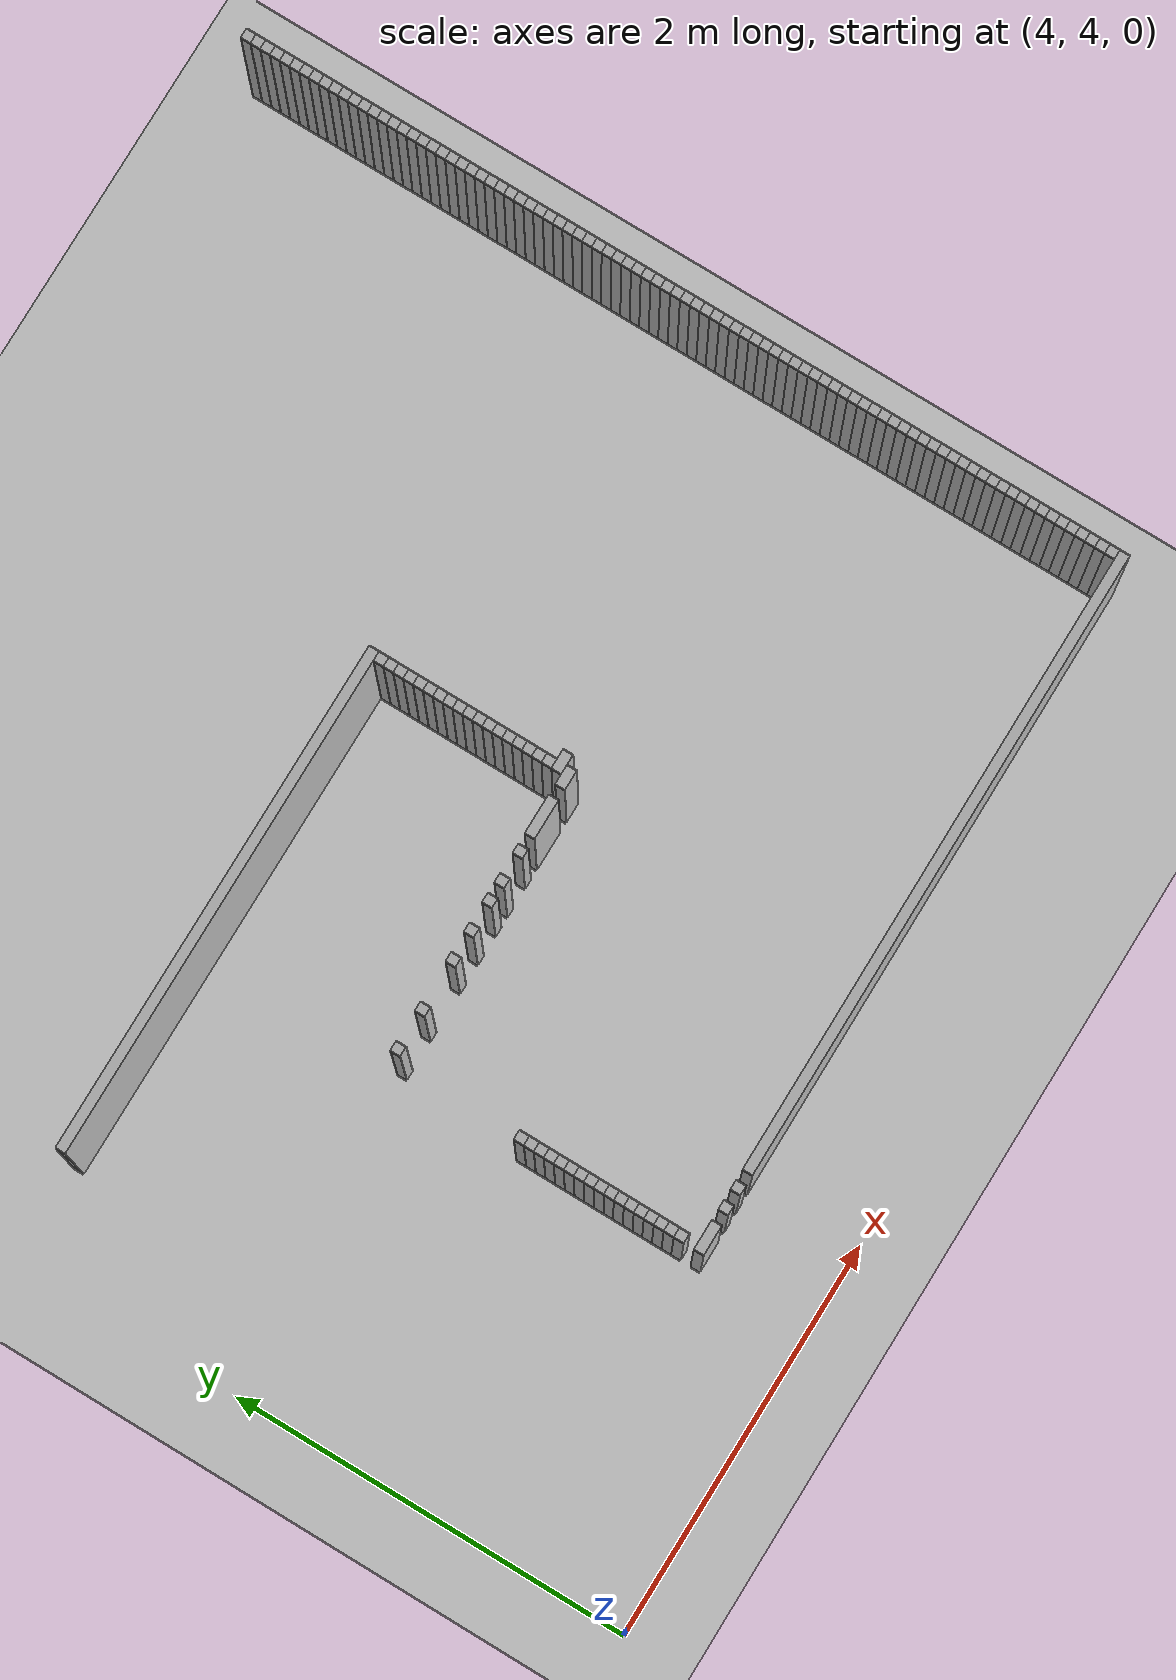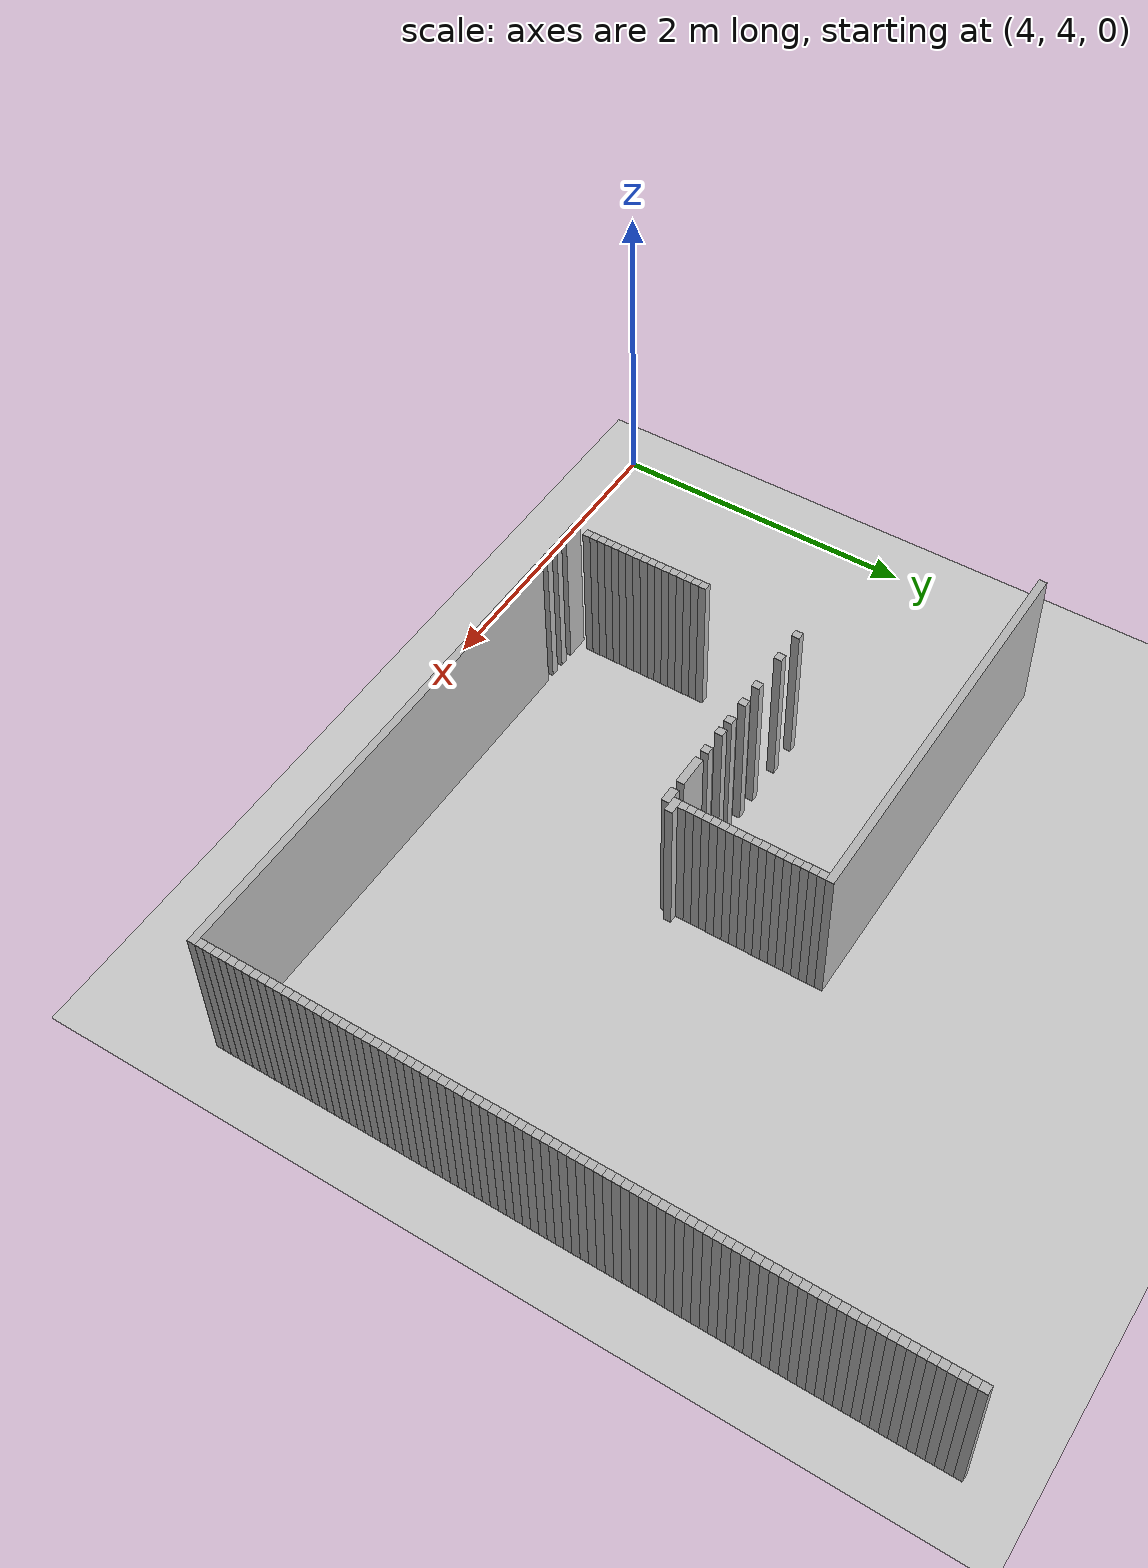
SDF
<sdf version="1.6">
 <world name="udh1_world">
  <include><uri>model://ground_plane</uri></include>
  <include><uri>model://sun</uri></include>
  <model name="wall_41">
   <static>true</static>
   <pose>9.055 9.020000000000001 0.5 0 0 0</pose>
   <link name="link">
    <collision name="col"><geometry><box><size>0.05 0.05 1</size></box></geometry></collision>
    <visual name="vis"><geometry><box><size>0.05 0.05 1</size></box></geometry></visual>
   </link>
  </model>
  <model name="wall_45">
   <static>true</static>
   <pose>9.055 8.97 0.5 0 0 0</pose>
   <link name="link">
    <collision name="col"><geometry><box><size>0.05 0.05 1</size></box></geometry></collision>
    <visual name="vis"><geometry><box><size>0.05 0.05 1</size></box></geometry></visual>
   </link>
  </model>
  <model name="wall_49">
   <static>true</static>
   <pose>9.055 8.92 0.5 0 0 0</pose>
   <link name="link">
    <collision name="col"><geometry><box><size>0.05 0.05 1</size></box></geometry></collision>
    <visual name="vis"><geometry><box><size>0.05 0.05 1</size></box></geometry></visual>
   </link>
  </model>
  <model name="wall_53">
   <static>true</static>
   <pose>9.055 8.87 0.5 0 0 0</pose>
   <link name="link">
    <collision name="col"><geometry><box><size>0.05 0.05 1</size></box></geometry></collision>
    <visual name="vis"><geometry><box><size>0.05 0.05 1</size></box></geometry></visual>
   </link>
  </model>
  <model name="wall_57">
   <static>true</static>
   <pose>9.055 8.819999999999999 0.5 0 0 0</pose>
   <link name="link">
    <collision name="col"><geometry><box><size>0.05 0.05 1</size></box></geometry></collision>
    <visual name="vis"><geometry><box><size>0.05 0.05 1</size></box></geometry></visual>
   </link>
  </model>
  <model name="wall_61">
   <static>true</static>
   <pose>9.055 8.770000000000001 0.5 0 0 0</pose>
   <link name="link">
    <collision name="col"><geometry><box><size>0.05 0.05 1</size></box></geometry></collision>
    <visual name="vis"><geometry><box><size>0.05 0.05 1</size></box></geometry></visual>
   </link>
  </model>
  <model name="wall_65">
   <static>true</static>
   <pose>9.055 8.72 0.5 0 0 0</pose>
   <link name="link">
    <collision name="col"><geometry><box><size>0.05 0.05 1</size></box></geometry></collision>
    <visual name="vis"><geometry><box><size>0.05 0.05 1</size></box></geometry></visual>
   </link>
  </model>
  <model name="wall_69">
   <static>true</static>
   <pose>9.055 8.67 0.5 0 0 0</pose>
   <link name="link">
    <collision name="col"><geometry><box><size>0.05 0.05 1</size></box></geometry></collision>
    <visual name="vis"><geometry><box><size>0.05 0.05 1</size></box></geometry></visual>
   </link>
  </model>
  <model name="wall_73">
   <static>true</static>
   <pose>9.055 8.62 0.5 0 0 0</pose>
   <link name="link">
    <collision name="col"><geometry><box><size>0.05 0.05 1</size></box></geometry></collision>
    <visual name="vis"><geometry><box><size>0.05 0.05 1</size></box></geometry></visual>
   </link>
  </model>
  <model name="wall_77">
   <static>true</static>
   <pose>9.055 8.569999999999999 0.5 0 0 0</pose>
   <link name="link">
    <collision name="col"><geometry><box><size>0.05 0.05 1</size></box></geometry></collision>
    <visual name="vis"><geometry><box><size>0.05 0.05 1</size></box></geometry></visual>
   </link>
  </model>
  <model name="wall_81">
   <static>true</static>
   <pose>9.055 8.520000000000001 0.5 0 0 0</pose>
   <link name="link">
    <collision name="col"><geometry><box><size>0.05 0.05 1</size></box></geometry></collision>
    <visual name="vis"><geometry><box><size>0.05 0.05 1</size></box></geometry></visual>
   </link>
  </model>
  <model name="wall_85">
   <static>true</static>
   <pose>9.055 8.47 0.5 0 0 0</pose>
   <link name="link">
    <collision name="col"><geometry><box><size>0.05 0.05 1</size></box></geometry></collision>
    <visual name="vis"><geometry><box><size>0.05 0.05 1</size></box></geometry></visual>
   </link>
  </model>
  <model name="wall_89">
   <static>true</static>
   <pose>9.055 8.42 0.5 0 0 0</pose>
   <link name="link">
    <collision name="col"><geometry><box><size>0.05 0.05 1</size></box></geometry></collision>
    <visual name="vis"><geometry><box><size>0.05 0.05 1</size></box></geometry></visual>
   </link>
  </model>
  <model name="wall_94">
   <static>true</static>
   <pose>9.055 8.37 0.5 0 0 0</pose>
   <link name="link">
    <collision name="col"><geometry><box><size>0.05 0.05 1</size></box></geometry></collision>
    <visual name="vis"><geometry><box><size>0.05 0.05 1</size></box></geometry></visual>
   </link>
  </model>
  <model name="wall_98">
   <static>true</static>
   <pose>9.055 8.319999999999999 0.5 0 0 0</pose>
   <link name="link">
    <collision name="col"><geometry><box><size>0.05 0.05 1</size></box></geometry></collision>
    <visual name="vis"><geometry><box><size>0.05 0.05 1</size></box></geometry></visual>
   </link>
  </model>
  <model name="wall_102">
   <static>true</static>
   <pose>9.055 8.270000000000001 0.5 0 0 0</pose>
   <link name="link">
    <collision name="col"><geometry><box><size>0.05 0.05 1</size></box></geometry></collision>
    <visual name="vis"><geometry><box><size>0.05 0.05 1</size></box></geometry></visual>
   </link>
  </model>
  <model name="wall_106">
   <static>true</static>
   <pose>9.055 8.22 0.5 0 0 0</pose>
   <link name="link">
    <collision name="col"><geometry><box><size>0.05 0.05 1</size></box></geometry></collision>
    <visual name="vis"><geometry><box><size>0.05 0.05 1</size></box></geometry></visual>
   </link>
  </model>
  <model name="wall_111">
   <static>true</static>
   <pose>9.055 8.17 0.5 0 0 0</pose>
   <link name="link">
    <collision name="col"><geometry><box><size>0.05 0.05 1</size></box></geometry></collision>
    <visual name="vis"><geometry><box><size>0.05 0.05 1</size></box></geometry></visual>
   </link>
  </model>
  <model name="wall_115">
   <static>true</static>
   <pose>9.055 8.12 0.5 0 0 0</pose>
   <link name="link">
    <collision name="col"><geometry><box><size>0.05 0.05 1</size></box></geometry></collision>
    <visual name="vis"><geometry><box><size>0.05 0.05 1</size></box></geometry></visual>
   </link>
  </model>
  <model name="wall_119">
   <static>true</static>
   <pose>9.055 8.069999999999999 0.5 0 0 0</pose>
   <link name="link">
    <collision name="col"><geometry><box><size>0.05 0.05 1</size></box></geometry></collision>
    <visual name="vis"><geometry><box><size>0.05 0.05 1</size></box></geometry></visual>
   </link>
  </model>
  <model name="wall_123">
   <static>true</static>
   <pose>9.055 8.020000000000001 0.5 0 0 0</pose>
   <link name="link">
    <collision name="col"><geometry><box><size>0.05 0.05 1</size></box></geometry></collision>
    <visual name="vis"><geometry><box><size>0.05 0.05 1</size></box></geometry></visual>
   </link>
  </model>
  <model name="wall_127">
   <static>true</static>
   <pose>9.055 7.970000000000001 0.5 0 0 0</pose>
   <link name="link">
    <collision name="col"><geometry><box><size>0.05 0.05 1</size></box></geometry></collision>
    <visual name="vis"><geometry><box><size>0.05 0.05 1</size></box></geometry></visual>
   </link>
  </model>
  <model name="wall_131">
   <static>true</static>
   <pose>9.055 7.92 0.5 0 0 0</pose>
   <link name="link">
    <collision name="col"><geometry><box><size>0.05 0.05 1</size></box></geometry></collision>
    <visual name="vis"><geometry><box><size>0.05 0.05 1</size></box></geometry></visual>
   </link>
  </model>
  <model name="wall_136">
   <static>true</static>
   <pose>9.055 7.869999999999999 0.5 0 0 0</pose>
   <link name="link">
    <collision name="col"><geometry><box><size>0.05 0.05 1</size></box></geometry></collision>
    <visual name="vis"><geometry><box><size>0.05 0.05 1</size></box></geometry></visual>
   </link>
  </model>
  <model name="wall_140">
   <static>true</static>
   <pose>9.055 7.8199999999999985 0.5 0 0 0</pose>
   <link name="link">
    <collision name="col"><geometry><box><size>0.05 0.05 1</size></box></geometry></collision>
    <visual name="vis"><geometry><box><size>0.05 0.05 1</size></box></geometry></visual>
   </link>
  </model>
  <model name="wall_144">
   <static>true</static>
   <pose>9.055 7.770000000000001 0.5 0 0 0</pose>
   <link name="link">
    <collision name="col"><geometry><box><size>0.05 0.05 1</size></box></geometry></collision>
    <visual name="vis"><geometry><box><size>0.05 0.05 1</size></box></geometry></visual>
   </link>
  </model>
  <model name="wall_149">
   <static>true</static>
   <pose>9.055 7.720000000000001 0.5 0 0 0</pose>
   <link name="link">
    <collision name="col"><geometry><box><size>0.05 0.05 1</size></box></geometry></collision>
    <visual name="vis"><geometry><box><size>0.05 0.05 1</size></box></geometry></visual>
   </link>
  </model>
  <model name="wall_153">
   <static>true</static>
   <pose>9.055 7.67 0.5 0 0 0</pose>
   <link name="link">
    <collision name="col"><geometry><box><size>0.05 0.05 1</size></box></geometry></collision>
    <visual name="vis"><geometry><box><size>0.05 0.05 1</size></box></geometry></visual>
   </link>
  </model>
  <model name="wall_157">
   <static>true</static>
   <pose>9.055 7.619999999999999 0.5 0 0 0</pose>
   <link name="link">
    <collision name="col"><geometry><box><size>0.05 0.05 1</size></box></geometry></collision>
    <visual name="vis"><geometry><box><size>0.05 0.05 1</size></box></geometry></visual>
   </link>
  </model>
  <model name="wall_161">
   <static>true</static>
   <pose>9.055 7.5699999999999985 0.5 0 0 0</pose>
   <link name="link">
    <collision name="col"><geometry><box><size>0.05 0.05 1</size></box></geometry></collision>
    <visual name="vis"><geometry><box><size>0.05 0.05 1</size></box></geometry></visual>
   </link>
  </model>
  <model name="wall_165">
   <static>true</static>
   <pose>9.055 7.520000000000001 0.5 0 0 0</pose>
   <link name="link">
    <collision name="col"><geometry><box><size>0.05 0.05 1</size></box></geometry></collision>
    <visual name="vis"><geometry><box><size>0.05 0.05 1</size></box></geometry></visual>
   </link>
  </model>
  <model name="wall_170">
   <static>true</static>
   <pose>9.055 7.470000000000001 0.5 0 0 0</pose>
   <link name="link">
    <collision name="col"><geometry><box><size>0.05 0.05 1</size></box></geometry></collision>
    <visual name="vis"><geometry><box><size>0.05 0.05 1</size></box></geometry></visual>
   </link>
  </model>
  <model name="wall_174">
   <static>true</static>
   <pose>9.055 7.42 0.5 0 0 0</pose>
   <link name="link">
    <collision name="col"><geometry><box><size>0.05 0.05 1</size></box></geometry></collision>
    <visual name="vis"><geometry><box><size>0.05 0.05 1</size></box></geometry></visual>
   </link>
  </model>
  <model name="wall_178">
   <static>true</static>
   <pose>9.055 7.369999999999999 0.5 0 0 0</pose>
   <link name="link">
    <collision name="col"><geometry><box><size>0.05 0.05 1</size></box></geometry></collision>
    <visual name="vis"><geometry><box><size>0.05 0.05 1</size></box></geometry></visual>
   </link>
  </model>
  <model name="wall_182">
   <static>true</static>
   <pose>9.055 7.3199999999999985 0.5 0 0 0</pose>
   <link name="link">
    <collision name="col"><geometry><box><size>0.05 0.05 1</size></box></geometry></collision>
    <visual name="vis"><geometry><box><size>0.05 0.05 1</size></box></geometry></visual>
   </link>
  </model>
  <model name="wall_186">
   <static>true</static>
   <pose>9.055 7.270000000000001 0.5 0 0 0</pose>
   <link name="link">
    <collision name="col"><geometry><box><size>0.05 0.05 1</size></box></geometry></collision>
    <visual name="vis"><geometry><box><size>0.05 0.05 1</size></box></geometry></visual>
   </link>
  </model>
  <model name="wall_190">
   <static>true</static>
   <pose>9.055 7.220000000000001 0.5 0 0 0</pose>
   <link name="link">
    <collision name="col"><geometry><box><size>0.05 0.05 1</size></box></geometry></collision>
    <visual name="vis"><geometry><box><size>0.05 0.05 1</size></box></geometry></visual>
   </link>
  </model>
  <model name="wall_194">
   <static>true</static>
   <pose>9.055 7.17 0.5 0 0 0</pose>
   <link name="link">
    <collision name="col"><geometry><box><size>0.05 0.05 1</size></box></geometry></collision>
    <visual name="vis"><geometry><box><size>0.05 0.05 1</size></box></geometry></visual>
   </link>
  </model>
  <model name="wall_198">
   <static>true</static>
   <pose>5.755000000000001 7.119999999999999 0.5 0 0 0</pose>
   <link name="link">
    <collision name="col"><geometry><box><size>2.5500000000000003 0.05 1</size></box></geometry></collision>
    <visual name="vis"><geometry><box><size>2.5500000000000003 0.05 1</size></box></geometry></visual>
   </link>
  </model>
  <model name="wall_199">
   <static>true</static>
   <pose>9.055 7.119999999999999 0.5 0 0 0</pose>
   <link name="link">
    <collision name="col"><geometry><box><size>0.05 0.05 1</size></box></geometry></collision>
    <visual name="vis"><geometry><box><size>0.05 0.05 1</size></box></geometry></visual>
   </link>
  </model>
  <model name="wall_205">
   <static>true</static>
   <pose>7.005000000000003 7.0699999999999985 0.5 0 0 0</pose>
   <link name="link">
    <collision name="col"><geometry><box><size>0.05 0.05 1</size></box></geometry></collision>
    <visual name="vis"><geometry><box><size>0.05 0.05 1</size></box></geometry></visual>
   </link>
  </model>
  <model name="wall_206">
   <static>true</static>
   <pose>9.055 7.0699999999999985 0.5 0 0 0</pose>
   <link name="link">
    <collision name="col"><geometry><box><size>0.05 0.05 1</size></box></geometry></collision>
    <visual name="vis"><geometry><box><size>0.05 0.05 1</size></box></geometry></visual>
   </link>
  </model>
  <model name="wall_213">
   <static>true</static>
   <pose>7.005000000000003 7.020000000000001 0.5 0 0 0</pose>
   <link name="link">
    <collision name="col"><geometry><box><size>0.05 0.05 1</size></box></geometry></collision>
    <visual name="vis"><geometry><box><size>0.05 0.05 1</size></box></geometry></visual>
   </link>
  </model>
  <model name="wall_214">
   <static>true</static>
   <pose>9.055 7.020000000000001 0.5 0 0 0</pose>
   <link name="link">
    <collision name="col"><geometry><box><size>0.05 0.05 1</size></box></geometry></collision>
    <visual name="vis"><geometry><box><size>0.05 0.05 1</size></box></geometry></visual>
   </link>
  </model>
  <model name="wall_222">
   <static>true</static>
   <pose>7.005000000000003 6.970000000000001 0.5 0 0 0</pose>
   <link name="link">
    <collision name="col"><geometry><box><size>0.05 0.05 1</size></box></geometry></collision>
    <visual name="vis"><geometry><box><size>0.05 0.05 1</size></box></geometry></visual>
   </link>
  </model>
  <model name="wall_223">
   <static>true</static>
   <pose>9.055 6.970000000000001 0.5 0 0 0</pose>
   <link name="link">
    <collision name="col"><geometry><box><size>0.05 0.05 1</size></box></geometry></collision>
    <visual name="vis"><geometry><box><size>0.05 0.05 1</size></box></geometry></visual>
   </link>
  </model>
  <model name="wall_230">
   <static>true</static>
   <pose>7.005000000000003 6.92 0.5 0 0 0</pose>
   <link name="link">
    <collision name="col"><geometry><box><size>0.05 0.05 1</size></box></geometry></collision>
    <visual name="vis"><geometry><box><size>0.05 0.05 1</size></box></geometry></visual>
   </link>
  </model>
  <model name="wall_231">
   <static>true</static>
   <pose>9.055 6.92 0.5 0 0 0</pose>
   <link name="link">
    <collision name="col"><geometry><box><size>0.05 0.05 1</size></box></geometry></collision>
    <visual name="vis"><geometry><box><size>0.05 0.05 1</size></box></geometry></visual>
   </link>
  </model>
  <model name="wall_238">
   <static>true</static>
   <pose>7.005000000000003 6.869999999999999 0.5 0 0 0</pose>
   <link name="link">
    <collision name="col"><geometry><box><size>0.05 0.05 1</size></box></geometry></collision>
    <visual name="vis"><geometry><box><size>0.05 0.05 1</size></box></geometry></visual>
   </link>
  </model>
  <model name="wall_239">
   <static>true</static>
   <pose>9.055 6.869999999999999 0.5 0 0 0</pose>
   <link name="link">
    <collision name="col"><geometry><box><size>0.05 0.05 1</size></box></geometry></collision>
    <visual name="vis"><geometry><box><size>0.05 0.05 1</size></box></geometry></visual>
   </link>
  </model>
  <model name="wall_246">
   <static>true</static>
   <pose>7.005000000000003 6.82 0.5 0 0 0</pose>
   <link name="link">
    <collision name="col"><geometry><box><size>0.05 0.05 1</size></box></geometry></collision>
    <visual name="vis"><geometry><box><size>0.05 0.05 1</size></box></geometry></visual>
   </link>
  </model>
  <model name="wall_247">
   <static>true</static>
   <pose>9.055 6.82 0.5 0 0 0</pose>
   <link name="link">
    <collision name="col"><geometry><box><size>0.05 0.05 1</size></box></geometry></collision>
    <visual name="vis"><geometry><box><size>0.05 0.05 1</size></box></geometry></visual>
   </link>
  </model>
  <model name="wall_254">
   <static>true</static>
   <pose>7.005000000000003 6.77 0.5 0 0 0</pose>
   <link name="link">
    <collision name="col"><geometry><box><size>0.05 0.05 1</size></box></geometry></collision>
    <visual name="vis"><geometry><box><size>0.05 0.05 1</size></box></geometry></visual>
   </link>
  </model>
  <model name="wall_255">
   <static>true</static>
   <pose>9.055 6.77 0.5 0 0 0</pose>
   <link name="link">
    <collision name="col"><geometry><box><size>0.05 0.05 1</size></box></geometry></collision>
    <visual name="vis"><geometry><box><size>0.05 0.05 1</size></box></geometry></visual>
   </link>
  </model>
  <model name="wall_262">
   <static>true</static>
   <pose>7.005000000000003 6.720000000000001 0.5 0 0 0</pose>
   <link name="link">
    <collision name="col"><geometry><box><size>0.05 0.05 1</size></box></geometry></collision>
    <visual name="vis"><geometry><box><size>0.05 0.05 1</size></box></geometry></visual>
   </link>
  </model>
  <model name="wall_263">
   <static>true</static>
   <pose>9.055 6.720000000000001 0.5 0 0 0</pose>
   <link name="link">
    <collision name="col"><geometry><box><size>0.05 0.05 1</size></box></geometry></collision>
    <visual name="vis"><geometry><box><size>0.05 0.05 1</size></box></geometry></visual>
   </link>
  </model>
  <model name="wall_270">
   <static>true</static>
   <pose>7.005000000000003 6.67 0.5 0 0 0</pose>
   <link name="link">
    <collision name="col"><geometry><box><size>0.05 0.05 1</size></box></geometry></collision>
    <visual name="vis"><geometry><box><size>0.05 0.05 1</size></box></geometry></visual>
   </link>
  </model>
  <model name="wall_271">
   <static>true</static>
   <pose>9.055 6.67 0.5 0 0 0</pose>
   <link name="link">
    <collision name="col"><geometry><box><size>0.05 0.05 1</size></box></geometry></collision>
    <visual name="vis"><geometry><box><size>0.05 0.05 1</size></box></geometry></visual>
   </link>
  </model>
  <model name="wall_283">
   <static>true</static>
   <pose>7.005000000000003 6.619999999999999 0.5 0 0 0</pose>
   <link name="link">
    <collision name="col"><geometry><box><size>0.05 0.05 1</size></box></geometry></collision>
    <visual name="vis"><geometry><box><size>0.05 0.05 1</size></box></geometry></visual>
   </link>
  </model>
  <model name="wall_284">
   <static>true</static>
   <pose>9.055 6.619999999999999 0.5 0 0 0</pose>
   <link name="link">
    <collision name="col"><geometry><box><size>0.05 0.05 1</size></box></geometry></collision>
    <visual name="vis"><geometry><box><size>0.05 0.05 1</size></box></geometry></visual>
   </link>
  </model>
  <model name="wall_291">
   <static>true</static>
   <pose>7.005000000000003 6.57 0.5 0 0 0</pose>
   <link name="link">
    <collision name="col"><geometry><box><size>0.05 0.05 1</size></box></geometry></collision>
    <visual name="vis"><geometry><box><size>0.05 0.05 1</size></box></geometry></visual>
   </link>
  </model>
  <model name="wall_292">
   <static>true</static>
   <pose>9.055 6.57 0.5 0 0 0</pose>
   <link name="link">
    <collision name="col"><geometry><box><size>0.05 0.05 1</size></box></geometry></collision>
    <visual name="vis"><geometry><box><size>0.05 0.05 1</size></box></geometry></visual>
   </link>
  </model>
  <model name="wall_297">
   <static>true</static>
   <pose>7.005000000000003 6.52 0.5 0 0 0</pose>
   <link name="link">
    <collision name="col"><geometry><box><size>0.05 0.05 1</size></box></geometry></collision>
    <visual name="vis"><geometry><box><size>0.05 0.05 1</size></box></geometry></visual>
   </link>
  </model>
  <model name="wall_298">
   <static>true</static>
   <pose>9.055 6.52 0.5 0 0 0</pose>
   <link name="link">
    <collision name="col"><geometry><box><size>0.05 0.05 1</size></box></geometry></collision>
    <visual name="vis"><geometry><box><size>0.05 0.05 1</size></box></geometry></visual>
   </link>
  </model>
  <model name="wall_303">
   <static>true</static>
   <pose>7.005000000000003 6.470000000000001 0.5 0 0 0</pose>
   <link name="link">
    <collision name="col"><geometry><box><size>0.05 0.05 1</size></box></geometry></collision>
    <visual name="vis"><geometry><box><size>0.05 0.05 1</size></box></geometry></visual>
   </link>
  </model>
  <model name="wall_304">
   <static>true</static>
   <pose>9.055 6.470000000000001 0.5 0 0 0</pose>
   <link name="link">
    <collision name="col"><geometry><box><size>0.05 0.05 1</size></box></geometry></collision>
    <visual name="vis"><geometry><box><size>0.05 0.05 1</size></box></geometry></visual>
   </link>
  </model>
  <model name="wall_309">
   <static>true</static>
   <pose>7.005000000000003 6.42 0.5 0 0 0</pose>
   <link name="link">
    <collision name="col"><geometry><box><size>0.05 0.05 1</size></box></geometry></collision>
    <visual name="vis"><geometry><box><size>0.05 0.05 1</size></box></geometry></visual>
   </link>
  </model>
  <model name="wall_310">
   <static>true</static>
   <pose>9.055 6.42 0.5 0 0 0</pose>
   <link name="link">
    <collision name="col"><geometry><box><size>0.05 0.05 1</size></box></geometry></collision>
    <visual name="vis"><geometry><box><size>0.05 0.05 1</size></box></geometry></visual>
   </link>
  </model>
  <model name="wall_315">
   <static>true</static>
   <pose>7.005000000000003 6.369999999999999 0.5 0 0 0</pose>
   <link name="link">
    <collision name="col"><geometry><box><size>0.05 0.05 1</size></box></geometry></collision>
    <visual name="vis"><geometry><box><size>0.05 0.05 1</size></box></geometry></visual>
   </link>
  </model>
  <model name="wall_316">
   <static>true</static>
   <pose>9.055 6.369999999999999 0.5 0 0 0</pose>
   <link name="link">
    <collision name="col"><geometry><box><size>0.05 0.05 1</size></box></geometry></collision>
    <visual name="vis"><geometry><box><size>0.05 0.05 1</size></box></geometry></visual>
   </link>
  </model>
  <model name="wall_321">
   <static>true</static>
   <pose>7.005000000000003 6.32 0.5 0 0 0</pose>
   <link name="link">
    <collision name="col"><geometry><box><size>0.05 0.05 1</size></box></geometry></collision>
    <visual name="vis"><geometry><box><size>0.05 0.05 1</size></box></geometry></visual>
   </link>
  </model>
  <model name="wall_322">
   <static>true</static>
   <pose>9.055 6.32 0.5 0 0 0</pose>
   <link name="link">
    <collision name="col"><geometry><box><size>0.05 0.05 1</size></box></geometry></collision>
    <visual name="vis"><geometry><box><size>0.05 0.05 1</size></box></geometry></visual>
   </link>
  </model>
  <model name="wall_327">
   <static>true</static>
   <pose>7.005000000000003 6.27 0.5 0 0 0</pose>
   <link name="link">
    <collision name="col"><geometry><box><size>0.05 0.05 1</size></box></geometry></collision>
    <visual name="vis"><geometry><box><size>0.05 0.05 1</size></box></geometry></visual>
   </link>
  </model>
  <model name="wall_328">
   <static>true</static>
   <pose>9.055 6.27 0.5 0 0 0</pose>
   <link name="link">
    <collision name="col"><geometry><box><size>0.05 0.05 1</size></box></geometry></collision>
    <visual name="vis"><geometry><box><size>0.05 0.05 1</size></box></geometry></visual>
   </link>
  </model>
  <model name="wall_333">
   <static>true</static>
   <pose>7.005000000000003 6.220000000000001 0.5 0 0 0</pose>
   <link name="link">
    <collision name="col"><geometry><box><size>0.05 0.05 1</size></box></geometry></collision>
    <visual name="vis"><geometry><box><size>0.05 0.05 1</size></box></geometry></visual>
   </link>
  </model>
  <model name="wall_334">
   <static>true</static>
   <pose>9.055 6.220000000000001 0.5 0 0 0</pose>
   <link name="link">
    <collision name="col"><geometry><box><size>0.05 0.05 1</size></box></geometry></collision>
    <visual name="vis"><geometry><box><size>0.05 0.05 1</size></box></geometry></visual>
   </link>
  </model>
  <model name="wall_339">
   <static>true</static>
   <pose>7.030000000000001 6.17 0.5 0 0 0</pose>
   <link name="link">
    <collision name="col"><geometry><box><size>0.1 0.05 1</size></box></geometry></collision>
    <visual name="vis"><geometry><box><size>0.1 0.05 1</size></box></geometry></visual>
   </link>
  </model>
  <model name="wall_340">
   <static>true</static>
   <pose>9.055 6.17 0.5 0 0 0</pose>
   <link name="link">
    <collision name="col"><geometry><box><size>0.05 0.05 1</size></box></geometry></collision>
    <visual name="vis"><geometry><box><size>0.05 0.05 1</size></box></geometry></visual>
   </link>
  </model>
  <model name="wall_345">
   <static>true</static>
   <pose>5.605 6.119999999999999 0.5 0 0 0</pose>
   <link name="link">
    <collision name="col"><geometry><box><size>0.05 0.05 1</size></box></geometry></collision>
    <visual name="vis"><geometry><box><size>0.05 0.05 1</size></box></geometry></visual>
   </link>
  </model>
  <model name="wall_346">
   <static>true</static>
   <pose>5.8050000000000015 6.119999999999999 0.5 0 0 0</pose>
   <link name="link">
    <collision name="col"><geometry><box><size>0.05 0.05 1</size></box></geometry></collision>
    <visual name="vis"><geometry><box><size>0.05 0.05 1</size></box></geometry></visual>
   </link>
  </model>
  <model name="wall_347">
   <static>true</static>
   <pose>6.0550000000000015 6.119999999999999 0.5 0 0 0</pose>
   <link name="link">
    <collision name="col"><geometry><box><size>0.05 0.05 1</size></box></geometry></collision>
    <visual name="vis"><geometry><box><size>0.05 0.05 1</size></box></geometry></visual>
   </link>
  </model>
  <model name="wall_348">
   <static>true</static>
   <pose>6.205000000000002 6.119999999999999 0.5 0 0 0</pose>
   <link name="link">
    <collision name="col"><geometry><box><size>0.05 0.05 1</size></box></geometry></collision>
    <visual name="vis"><geometry><box><size>0.05 0.05 1</size></box></geometry></visual>
   </link>
  </model>
  <model name="wall_349">
   <static>true</static>
   <pose>6.355 6.119999999999999 0.5 0 0 0</pose>
   <link name="link">
    <collision name="col"><geometry><box><size>0.05 0.05 1</size></box></geometry></collision>
    <visual name="vis"><geometry><box><size>0.05 0.05 1</size></box></geometry></visual>
   </link>
  </model>
  <model name="wall_350">
   <static>true</static>
   <pose>6.455000000000002 6.119999999999999 0.5 0 0 0</pose>
   <link name="link">
    <collision name="col"><geometry><box><size>0.05 0.05 1</size></box></geometry></collision>
    <visual name="vis"><geometry><box><size>0.05 0.05 1</size></box></geometry></visual>
   </link>
  </model>
  <model name="wall_351">
   <static>true</static>
   <pose>6.605 6.119999999999999 0.5 0 0 0</pose>
   <link name="link">
    <collision name="col"><geometry><box><size>0.05 0.05 1</size></box></geometry></collision>
    <visual name="vis"><geometry><box><size>0.05 0.05 1</size></box></geometry></visual>
   </link>
  </model>
  <model name="wall_352">
   <static>true</static>
   <pose>6.780000000000001 6.119999999999999 0.5 0 0 0</pose>
   <link name="link">
    <collision name="col"><geometry><box><size>0.2 0.05 1</size></box></geometry></collision>
    <visual name="vis"><geometry><box><size>0.2 0.05 1</size></box></geometry></visual>
   </link>
  </model>
  <model name="wall_353">
   <static>true</static>
   <pose>6.98 6.119999999999999 0.5 0 0 0</pose>
   <link name="link">
    <collision name="col"><geometry><box><size>0.1 0.05 1</size></box></geometry></collision>
    <visual name="vis"><geometry><box><size>0.1 0.05 1</size></box></geometry></visual>
   </link>
  </model>
  <model name="wall_354">
   <static>true</static>
   <pose>9.055 6.119999999999999 0.5 0 0 0</pose>
   <link name="link">
    <collision name="col"><geometry><box><size>0.05 0.05 1</size></box></geometry></collision>
    <visual name="vis"><geometry><box><size>0.05 0.05 1</size></box></geometry></visual>
   </link>
  </model>
  <model name="wall_360">
   <static>true</static>
   <pose>9.055 6.07 0.5 0 0 0</pose>
   <link name="link">
    <collision name="col"><geometry><box><size>0.05 0.05 1</size></box></geometry></collision>
    <visual name="vis"><geometry><box><size>0.05 0.05 1</size></box></geometry></visual>
   </link>
  </model>
  <model name="wall_366">
   <static>true</static>
   <pose>9.055 6.02 0.5 0 0 0</pose>
   <link name="link">
    <collision name="col"><geometry><box><size>0.05 0.05 1</size></box></geometry></collision>
    <visual name="vis"><geometry><box><size>0.05 0.05 1</size></box></geometry></visual>
   </link>
  </model>
  <model name="wall_372">
   <static>true</static>
   <pose>9.055 5.970000000000001 0.5 0 0 0</pose>
   <link name="link">
    <collision name="col"><geometry><box><size>0.05 0.05 1</size></box></geometry></collision>
    <visual name="vis"><geometry><box><size>0.05 0.05 1</size></box></geometry></visual>
   </link>
  </model>
  <model name="wall_378">
   <static>true</static>
   <pose>9.055 5.92 0.5 0 0 0</pose>
   <link name="link">
    <collision name="col"><geometry><box><size>0.05 0.05 1</size></box></geometry></collision>
    <visual name="vis"><geometry><box><size>0.05 0.05 1</size></box></geometry></visual>
   </link>
  </model>
  <model name="wall_384">
   <static>true</static>
   <pose>9.055 5.869999999999999 0.5 0 0 0</pose>
   <link name="link">
    <collision name="col"><geometry><box><size>0.05 0.05 1</size></box></geometry></collision>
    <visual name="vis"><geometry><box><size>0.05 0.05 1</size></box></geometry></visual>
   </link>
  </model>
  <model name="wall_390">
   <static>true</static>
   <pose>9.055 5.82 0.5 0 0 0</pose>
   <link name="link">
    <collision name="col"><geometry><box><size>0.05 0.05 1</size></box></geometry></collision>
    <visual name="vis"><geometry><box><size>0.05 0.05 1</size></box></geometry></visual>
   </link>
  </model>
  <model name="wall_396">
   <static>true</static>
   <pose>9.055 5.77 0.5 0 0 0</pose>
   <link name="link">
    <collision name="col"><geometry><box><size>0.05 0.05 1</size></box></geometry></collision>
    <visual name="vis"><geometry><box><size>0.05 0.05 1</size></box></geometry></visual>
   </link>
  </model>
  <model name="wall_402">
   <static>true</static>
   <pose>9.055 5.720000000000001 0.5 0 0 0</pose>
   <link name="link">
    <collision name="col"><geometry><box><size>0.05 0.05 1</size></box></geometry></collision>
    <visual name="vis"><geometry><box><size>0.05 0.05 1</size></box></geometry></visual>
   </link>
  </model>
  <model name="wall_408">
   <static>true</static>
   <pose>9.055 5.67 0.5 0 0 0</pose>
   <link name="link">
    <collision name="col"><geometry><box><size>0.05 0.05 1</size></box></geometry></collision>
    <visual name="vis"><geometry><box><size>0.05 0.05 1</size></box></geometry></visual>
   </link>
  </model>
  <model name="wall_414">
   <static>true</static>
   <pose>9.055 5.619999999999999 0.5 0 0 0</pose>
   <link name="link">
    <collision name="col"><geometry><box><size>0.05 0.05 1</size></box></geometry></collision>
    <visual name="vis"><geometry><box><size>0.05 0.05 1</size></box></geometry></visual>
   </link>
  </model>
  <model name="wall_421">
   <static>true</static>
   <pose>9.055 5.57 0.5 0 0 0</pose>
   <link name="link">
    <collision name="col"><geometry><box><size>0.05 0.05 1</size></box></geometry></collision>
    <visual name="vis"><geometry><box><size>0.05 0.05 1</size></box></geometry></visual>
   </link>
  </model>
  <model name="wall_430">
   <static>true</static>
   <pose>9.055 5.52 0.5 0 0 0</pose>
   <link name="link">
    <collision name="col"><geometry><box><size>0.05 0.05 1</size></box></geometry></collision>
    <visual name="vis"><geometry><box><size>0.05 0.05 1</size></box></geometry></visual>
   </link>
  </model>
  <model name="wall_438">
   <static>true</static>
   <pose>5.5550000000000015 5.470000000000001 0.5 0 0 0</pose>
   <link name="link">
    <collision name="col"><geometry><box><size>0.05 0.05 1</size></box></geometry></collision>
    <visual name="vis"><geometry><box><size>0.05 0.05 1</size></box></geometry></visual>
   </link>
  </model>
  <model name="wall_439">
   <static>true</static>
   <pose>9.055 5.470000000000001 0.5 0 0 0</pose>
   <link name="link">
    <collision name="col"><geometry><box><size>0.05 0.05 1</size></box></geometry></collision>
    <visual name="vis"><geometry><box><size>0.05 0.05 1</size></box></geometry></visual>
   </link>
  </model>
  <model name="wall_447">
   <static>true</static>
   <pose>5.5550000000000015 5.42 0.5 0 0 0</pose>
   <link name="link">
    <collision name="col"><geometry><box><size>0.05 0.05 1</size></box></geometry></collision>
    <visual name="vis"><geometry><box><size>0.05 0.05 1</size></box></geometry></visual>
   </link>
  </model>
  <model name="wall_448">
   <static>true</static>
   <pose>9.055 5.42 0.5 0 0 0</pose>
   <link name="link">
    <collision name="col"><geometry><box><size>0.05 0.05 1</size></box></geometry></collision>
    <visual name="vis"><geometry><box><size>0.05 0.05 1</size></box></geometry></visual>
   </link>
  </model>
  <model name="wall_456">
   <static>true</static>
   <pose>5.5550000000000015 5.369999999999999 0.5 0 0 0</pose>
   <link name="link">
    <collision name="col"><geometry><box><size>0.05 0.05 1</size></box></geometry></collision>
    <visual name="vis"><geometry><box><size>0.05 0.05 1</size></box></geometry></visual>
   </link>
  </model>
  <model name="wall_457">
   <static>true</static>
   <pose>9.055 5.369999999999999 0.5 0 0 0</pose>
   <link name="link">
    <collision name="col"><geometry><box><size>0.05 0.05 1</size></box></geometry></collision>
    <visual name="vis"><geometry><box><size>0.05 0.05 1</size></box></geometry></visual>
   </link>
  </model>
  <model name="wall_465">
   <static>true</static>
   <pose>5.5550000000000015 5.32 0.5 0 0 0</pose>
   <link name="link">
    <collision name="col"><geometry><box><size>0.05 0.05 1</size></box></geometry></collision>
    <visual name="vis"><geometry><box><size>0.05 0.05 1</size></box></geometry></visual>
   </link>
  </model>
  <model name="wall_466">
   <static>true</static>
   <pose>9.055 5.32 0.5 0 0 0</pose>
   <link name="link">
    <collision name="col"><geometry><box><size>0.05 0.05 1</size></box></geometry></collision>
    <visual name="vis"><geometry><box><size>0.05 0.05 1</size></box></geometry></visual>
   </link>
  </model>
  <model name="wall_474">
   <static>true</static>
   <pose>5.5550000000000015 5.27 0.5 0 0 0</pose>
   <link name="link">
    <collision name="col"><geometry><box><size>0.05 0.05 1</size></box></geometry></collision>
    <visual name="vis"><geometry><box><size>0.05 0.05 1</size></box></geometry></visual>
   </link>
  </model>
  <model name="wall_475">
   <static>true</static>
   <pose>9.055 5.27 0.5 0 0 0</pose>
   <link name="link">
    <collision name="col"><geometry><box><size>0.05 0.05 1</size></box></geometry></collision>
    <visual name="vis"><geometry><box><size>0.05 0.05 1</size></box></geometry></visual>
   </link>
  </model>
  <model name="wall_483">
   <static>true</static>
   <pose>5.5550000000000015 5.220000000000001 0.5 0 0 0</pose>
   <link name="link">
    <collision name="col"><geometry><box><size>0.05 0.05 1</size></box></geometry></collision>
    <visual name="vis"><geometry><box><size>0.05 0.05 1</size></box></geometry></visual>
   </link>
  </model>
  <model name="wall_484">
   <static>true</static>
   <pose>9.055 5.220000000000001 0.5 0 0 0</pose>
   <link name="link">
    <collision name="col"><geometry><box><size>0.05 0.05 1</size></box></geometry></collision>
    <visual name="vis"><geometry><box><size>0.05 0.05 1</size></box></geometry></visual>
   </link>
  </model>
  <model name="wall_492">
   <static>true</static>
   <pose>5.5550000000000015 5.17 0.5 0 0 0</pose>
   <link name="link">
    <collision name="col"><geometry><box><size>0.05 0.05 1</size></box></geometry></collision>
    <visual name="vis"><geometry><box><size>0.05 0.05 1</size></box></geometry></visual>
   </link>
  </model>
  <model name="wall_493">
   <static>true</static>
   <pose>9.055 5.17 0.5 0 0 0</pose>
   <link name="link">
    <collision name="col"><geometry><box><size>0.05 0.05 1</size></box></geometry></collision>
    <visual name="vis"><geometry><box><size>0.05 0.05 1</size></box></geometry></visual>
   </link>
  </model>
  <model name="wall_501">
   <static>true</static>
   <pose>5.5550000000000015 5.119999999999999 0.5 0 0 0</pose>
   <link name="link">
    <collision name="col"><geometry><box><size>0.05 0.05 1</size></box></geometry></collision>
    <visual name="vis"><geometry><box><size>0.05 0.05 1</size></box></geometry></visual>
   </link>
  </model>
  <model name="wall_502">
   <static>true</static>
   <pose>9.055 5.119999999999999 0.5 0 0 0</pose>
   <link name="link">
    <collision name="col"><geometry><box><size>0.05 0.05 1</size></box></geometry></collision>
    <visual name="vis"><geometry><box><size>0.05 0.05 1</size></box></geometry></visual>
   </link>
  </model>
  <model name="wall_510">
   <static>true</static>
   <pose>5.5550000000000015 5.07 0.5 0 0 0</pose>
   <link name="link">
    <collision name="col"><geometry><box><size>0.05 0.05 1</size></box></geometry></collision>
    <visual name="vis"><geometry><box><size>0.05 0.05 1</size></box></geometry></visual>
   </link>
  </model>
  <model name="wall_511">
   <static>true</static>
   <pose>9.055 5.07 0.5 0 0 0</pose>
   <link name="link">
    <collision name="col"><geometry><box><size>0.05 0.05 1</size></box></geometry></collision>
    <visual name="vis"><geometry><box><size>0.05 0.05 1</size></box></geometry></visual>
   </link>
  </model>
  <model name="wall_519">
   <static>true</static>
   <pose>5.5550000000000015 5.02 0.5 0 0 0</pose>
   <link name="link">
    <collision name="col"><geometry><box><size>0.05 0.05 1</size></box></geometry></collision>
    <visual name="vis"><geometry><box><size>0.05 0.05 1</size></box></geometry></visual>
   </link>
  </model>
  <model name="wall_520">
   <static>true</static>
   <pose>9.055 5.02 0.5 0 0 0</pose>
   <link name="link">
    <collision name="col"><geometry><box><size>0.05 0.05 1</size></box></geometry></collision>
    <visual name="vis"><geometry><box><size>0.05 0.05 1</size></box></geometry></visual>
   </link>
  </model>
  <model name="wall_528">
   <static>true</static>
   <pose>5.5550000000000015 4.970000000000001 0.5 0 0 0</pose>
   <link name="link">
    <collision name="col"><geometry><box><size>0.05 0.05 1</size></box></geometry></collision>
    <visual name="vis"><geometry><box><size>0.05 0.05 1</size></box></geometry></visual>
   </link>
  </model>
  <model name="wall_529">
   <static>true</static>
   <pose>9.055 4.970000000000001 0.5 0 0 0</pose>
   <link name="link">
    <collision name="col"><geometry><box><size>0.05 0.05 1</size></box></geometry></collision>
    <visual name="vis"><geometry><box><size>0.05 0.05 1</size></box></geometry></visual>
   </link>
  </model>
  <model name="wall_537">
   <static>true</static>
   <pose>5.5550000000000015 4.92 0.5 0 0 0</pose>
   <link name="link">
    <collision name="col"><geometry><box><size>0.05 0.05 1</size></box></geometry></collision>
    <visual name="vis"><geometry><box><size>0.05 0.05 1</size></box></geometry></visual>
   </link>
  </model>
  <model name="wall_538">
   <static>true</static>
   <pose>9.055 4.92 0.5 0 0 0</pose>
   <link name="link">
    <collision name="col"><geometry><box><size>0.05 0.05 1</size></box></geometry></collision>
    <visual name="vis"><geometry><box><size>0.05 0.05 1</size></box></geometry></visual>
   </link>
  </model>
  <model name="wall_546">
   <static>true</static>
   <pose>5.5550000000000015 4.869999999999999 0.5 0 0 0</pose>
   <link name="link">
    <collision name="col"><geometry><box><size>0.05 0.05 1</size></box></geometry></collision>
    <visual name="vis"><geometry><box><size>0.05 0.05 1</size></box></geometry></visual>
   </link>
  </model>
  <model name="wall_547">
   <static>true</static>
   <pose>9.055 4.869999999999999 0.5 0 0 0</pose>
   <link name="link">
    <collision name="col"><geometry><box><size>0.05 0.05 1</size></box></geometry></collision>
    <visual name="vis"><geometry><box><size>0.05 0.05 1</size></box></geometry></visual>
   </link>
  </model>
  <model name="wall_554">
   <static>true</static>
   <pose>5.5550000000000015 4.82 0.5 0 0 0</pose>
   <link name="link">
    <collision name="col"><geometry><box><size>0.05 0.05 1</size></box></geometry></collision>
    <visual name="vis"><geometry><box><size>0.05 0.05 1</size></box></geometry></visual>
   </link>
  </model>
  <model name="wall_555">
   <static>true</static>
   <pose>9.055 4.82 0.5 0 0 0</pose>
   <link name="link">
    <collision name="col"><geometry><box><size>0.05 0.05 1</size></box></geometry></collision>
    <visual name="vis"><geometry><box><size>0.05 0.05 1</size></box></geometry></visual>
   </link>
  </model>
  <model name="wall_563">
   <static>true</static>
   <pose>5.5550000000000015 4.77 0.5 0 0 0</pose>
   <link name="link">
    <collision name="col"><geometry><box><size>0.05 0.05 1</size></box></geometry></collision>
    <visual name="vis"><geometry><box><size>0.05 0.05 1</size></box></geometry></visual>
   </link>
  </model>
  <model name="wall_564">
   <static>true</static>
   <pose>9.055 4.77 0.5 0 0 0</pose>
   <link name="link">
    <collision name="col"><geometry><box><size>0.05 0.05 1</size></box></geometry></collision>
    <visual name="vis"><geometry><box><size>0.05 0.05 1</size></box></geometry></visual>
   </link>
  </model>
  <model name="wall_572">
   <static>true</static>
   <pose>5.5550000000000015 4.720000000000001 0.5 0 0 0</pose>
   <link name="link">
    <collision name="col"><geometry><box><size>0.05 0.05 1</size></box></geometry></collision>
    <visual name="vis"><geometry><box><size>0.05 0.05 1</size></box></geometry></visual>
   </link>
  </model>
  <model name="wall_573">
   <static>true</static>
   <pose>9.055 4.720000000000001 0.5 0 0 0</pose>
   <link name="link">
    <collision name="col"><geometry><box><size>0.05 0.05 1</size></box></geometry></collision>
    <visual name="vis"><geometry><box><size>0.05 0.05 1</size></box></geometry></visual>
   </link>
  </model>
  <model name="wall_582">
   <static>true</static>
   <pose>5.5550000000000015 4.67 0.5 0 0 0</pose>
   <link name="link">
    <collision name="col"><geometry><box><size>0.05 0.05 1</size></box></geometry></collision>
    <visual name="vis"><geometry><box><size>0.05 0.05 1</size></box></geometry></visual>
   </link>
  </model>
  <model name="wall_583">
   <static>true</static>
   <pose>9.055 4.67 0.5 0 0 0</pose>
   <link name="link">
    <collision name="col"><geometry><box><size>0.05 0.05 1</size></box></geometry></collision>
    <visual name="vis"><geometry><box><size>0.05 0.05 1</size></box></geometry></visual>
   </link>
  </model>
  <model name="wall_596">
   <static>true</static>
   <pose>9.055 4.619999999999999 0.5 0 0 0</pose>
   <link name="link">
    <collision name="col"><geometry><box><size>0.05 0.05 1</size></box></geometry></collision>
    <visual name="vis"><geometry><box><size>0.05 0.05 1</size></box></geometry></visual>
   </link>
  </model>
  <model name="wall_606">
   <static>true</static>
   <pose>5.605 4.57 0.5 0 0 0</pose>
   <link name="link">
    <collision name="col"><geometry><box><size>0.15000000000000002 0.05 1</size></box></geometry></collision>
    <visual name="vis"><geometry><box><size>0.15000000000000002 0.05 1</size></box></geometry></visual>
   </link>
  </model>
  <model name="wall_607">
   <static>true</static>
   <pose>5.755000000000001 4.57 0.5 0 0 0</pose>
   <link name="link">
    <collision name="col"><geometry><box><size>0.05 0.05 1</size></box></geometry></collision>
    <visual name="vis"><geometry><box><size>0.05 0.05 1</size></box></geometry></visual>
   </link>
  </model>
  <model name="wall_608">
   <static>true</static>
   <pose>5.855 4.57 0.5 0 0 0</pose>
   <link name="link">
    <collision name="col"><geometry><box><size>0.05 0.05 1</size></box></geometry></collision>
    <visual name="vis"><geometry><box><size>0.05 0.05 1</size></box></geometry></visual>
   </link>
  </model>
  <model name="wall_609">
   <static>true</static>
   <pose>7.505000000000003 4.57 0.5 0 0 0</pose>
   <link name="link">
    <collision name="col"><geometry><box><size>3.1500000000000004 0.05 1</size></box></geometry></collision>
    <visual name="vis"><geometry><box><size>3.1500000000000004 0.05 1</size></box></geometry></visual>
   </link>
  </model>
 </world>
</sdf>
